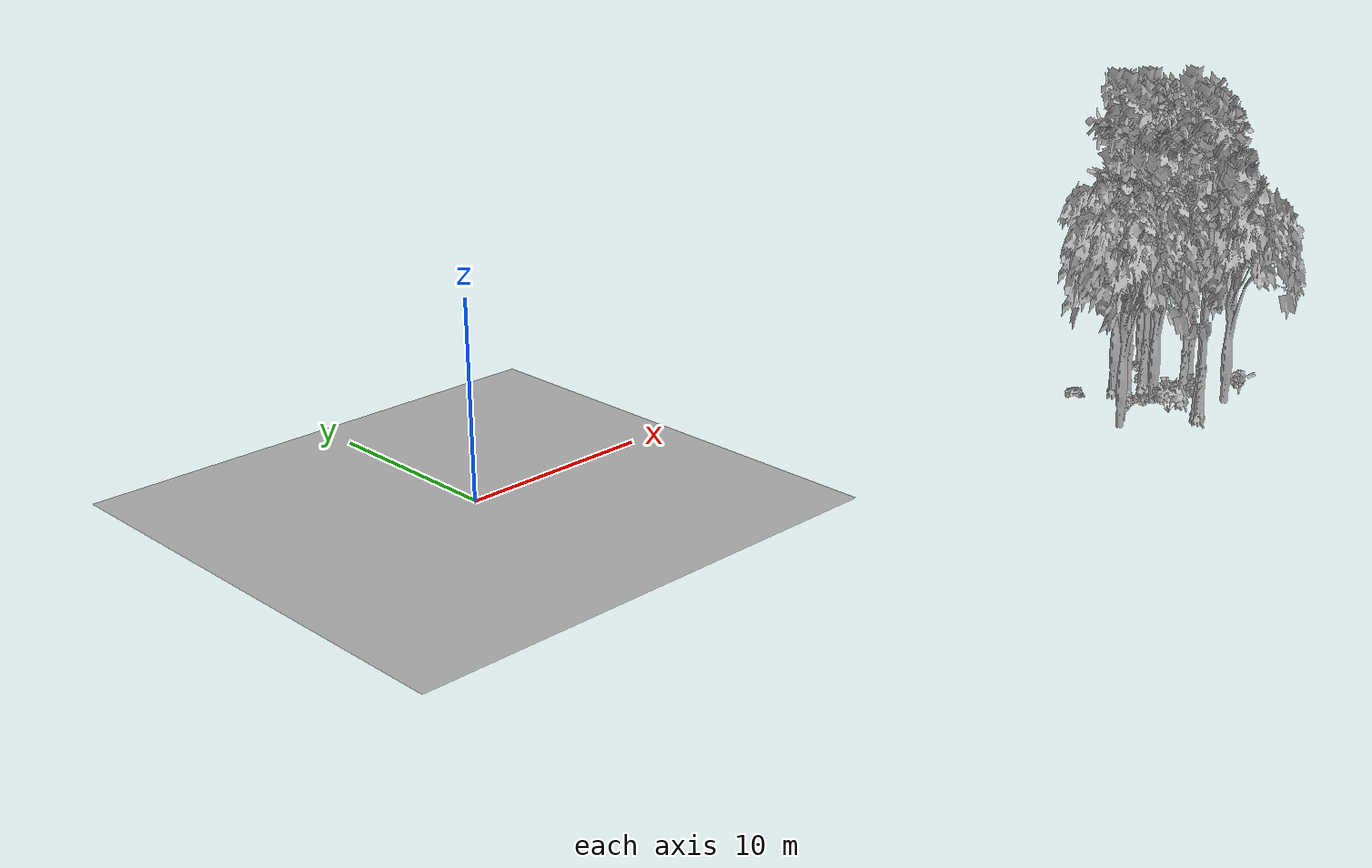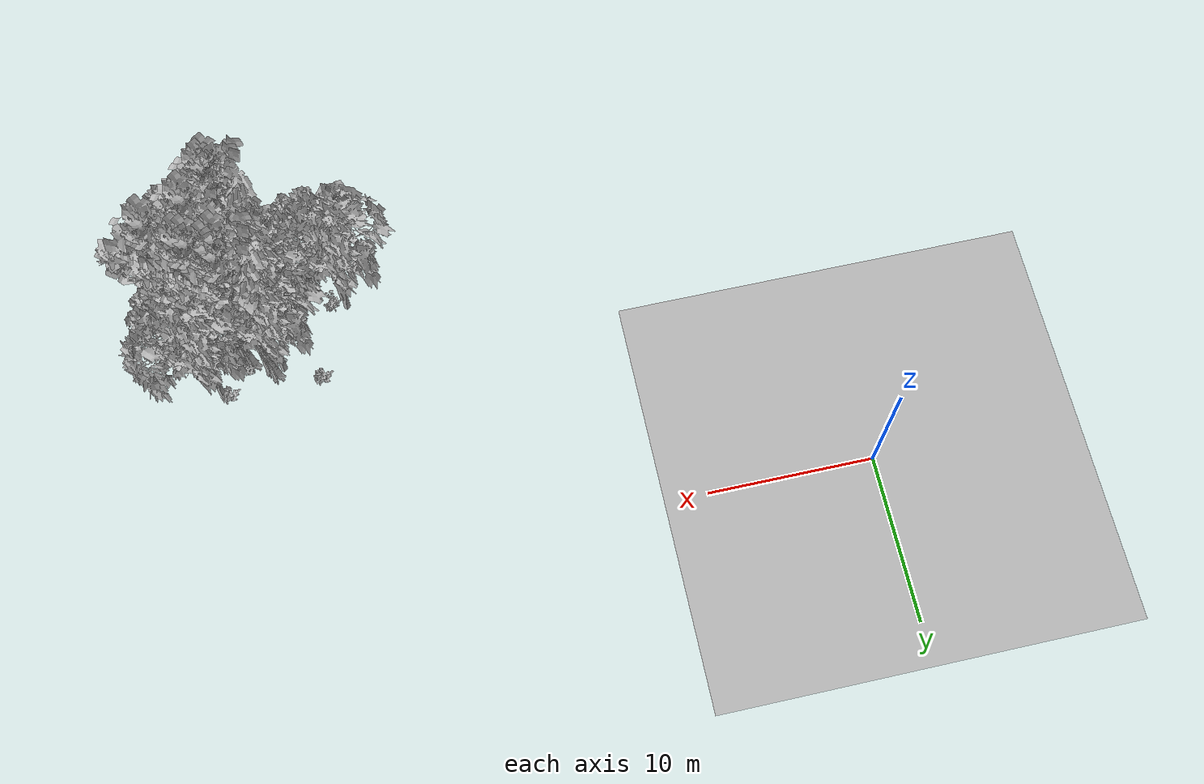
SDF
<sdf version="1.7">
 <world name="default">
  <model name="ground_plane">
   <static>1</static>
   <link name="link">
    <collision name="collision">
     <pose>-50 0 0 0 -0 0</pose>
     <geometry><plane><normal>0 0 1</normal><size>80 80</size></plane></geometry>
     <surface><contact><ode><min_depth>0.01</min_depth><max_vel>0</max_vel></ode></contact></surface>
    </collision>
    <visual name="grass">
     <cast_shadows>0</cast_shadows>
     <geometry>
      <mesh>
       <scale>0.46714285714285714 0.46714285714285714 0.1</scale>
       <uri>file://grass_plane/meshes/grass_plane.dae</uri>
      </mesh>
     </geometry>
    </visual>
   </link>
  </model>
  <model name="Tree 27">
   <static>1</static>
   <pose>33.91250878875485 -13.470792606628457 0 1.57079 -0 0</pose>
   <link name="link">
    <collision name="collision">
     <geometry><mesh><scale>3.5 5 3.5</scale><uri>model://tree_9/meshes/tree_9.obj</uri></mesh></geometry>
    </collision>
    <visual name="visual">
     <geometry><mesh><scale>3.5 5 3.5</scale><uri>model://tree_9/meshes/tree_9.obj</uri></mesh></geometry>
    </visual>
   </link>
  </model>
  <model name="Tree 68">
   <static>1</static>
   <pose>36.81829381499753 -12.469474861508889 0 1.57079 -0 0</pose>
   <link name="link">
    <collision name="collision">
     <geometry><mesh><scale>3.5 5 3.5</scale><uri>model://tree_2/meshes/tree_2.obj</uri></mesh></geometry>
    </collision>
    <visual name="visual">
     <geometry><mesh><scale>3.5 5 3.5</scale><uri>model://tree_2/meshes/tree_2.obj</uri></mesh></geometry>
    </visual>
   </link>
  </model>
  <model name="Tree 121">
   <static>1</static>
   <pose>34.863417988816806 -14.00943108616324 0 1.57079 -0 0</pose>
   <link name="link">
    <collision name="collision">
     <geometry><mesh><scale>3.5 5 3.5</scale><uri>model://tree_9/meshes/tree_9.obj</uri></mesh></geometry>
    </collision>
    <visual name="visual">
     <geometry><mesh><scale>3.5 5 3.5</scale><uri>model://tree_9/meshes/tree_9.obj</uri></mesh></geometry>
    </visual>
   </link>
  </model>
  <model name="Tree 205">
   <static>1</static>
   <pose>28.661978026531884 -16.543465411032994 0 1.57079 -0 0</pose>
   <link name="link">
    <collision name="collision">
     <geometry><mesh><scale>3.5 5 3.5</scale><uri>model://tree_2/meshes/tree_2.obj</uri></mesh></geometry>
    </collision>
    <visual name="visual">
     <geometry><mesh><scale>3.5 5 3.5</scale><uri>model://tree_2/meshes/tree_2.obj</uri></mesh></geometry>
    </visual>
   </link>
  </model>
  <model name="Tree 250">
   <static>1</static>
   <pose>33.5695198800985 -12.984121046782615 0 1.57079 -0 0</pose>
   <link name="link">
    <collision name="collision">
     <geometry><mesh><scale>3.5 5 3.5</scale><uri>model://tree_9/meshes/tree_9.obj</uri></mesh></geometry>
    </collision>
    <visual name="visual">
     <geometry><mesh><scale>3.5 5 3.5</scale><uri>model://tree_9/meshes/tree_9.obj</uri></mesh></geometry>
    </visual>
   </link>
  </model>
  <model name="Tree 278">
   <static>1</static>
   <pose>33.4120792589939 -13.933364478445807 0 1.57079 -0 0</pose>
   <link name="link">
    <collision name="collision">
     <geometry><mesh><scale>3.5 5 3.5</scale><uri>model://tree_9/meshes/tree_9.obj</uri></mesh></geometry>
    </collision>
    <visual name="visual">
     <geometry><mesh><scale>3.5 5 3.5</scale><uri>model://tree_9/meshes/tree_9.obj</uri></mesh></geometry>
    </visual>
   </link>
  </model>
  <model name="Tree 372">
   <static>1</static>
   <pose>35.25034056028858 -14.170819558030281 0 1.57079 -0 0</pose>
   <link name="link">
    <collision name="collision">
     <geometry><mesh><scale>3.5 5 3.5</scale><uri>model://tree_9/meshes/tree_9.obj</uri></mesh></geometry>
    </collision>
    <visual name="visual">
     <geometry><mesh><scale>3.5 5 3.5</scale><uri>model://tree_9/meshes/tree_9.obj</uri></mesh></geometry>
    </visual>
   </link>
  </model>
  <model name="Tree 417">
   <static>1</static>
   <pose>35.44672385627537 -18.597763471025914 0 1.57079 -0 0</pose>
   <link name="link">
    <collision name="collision">
     <geometry><mesh><scale>3.5 5 3.5</scale><uri>model://tree_2/meshes/tree_2.obj</uri></mesh></geometry>
    </collision>
    <visual name="visual">
     <geometry><mesh><scale>3.5 5 3.5</scale><uri>model://tree_2/meshes/tree_2.obj</uri></mesh></geometry>
    </visual>
   </link>
  </model>
  <model name="Tree 449">
   <static>1</static>
   <pose>34.740611126946774 -16.544534145119396 0 1.57079 -0 0</pose>
   <link name="link">
    <collision name="collision">
     <geometry><mesh><scale>3.5 5 3.5</scale><uri>model://tree_9/meshes/tree_9.obj</uri></mesh></geometry>
    </collision>
    <visual name="visual">
     <geometry><mesh><scale>3.5 5 3.5</scale><uri>model://tree_9/meshes/tree_9.obj</uri></mesh></geometry>
    </visual>
   </link>
  </model>
  <model name="Tree 490">
   <static>1</static>
   <pose>32.74320934976599 -15.889743158439693 0 1.57079 -0 0</pose>
   <link name="link">
    <collision name="collision">
     <geometry><mesh><scale>3.5 5 3.5</scale><uri>model://tree_2/meshes/tree_2.obj</uri></mesh></geometry>
    </collision>
    <visual name="visual">
     <geometry><mesh><scale>3.5 5 3.5</scale><uri>model://tree_2/meshes/tree_2.obj</uri></mesh></geometry>
    </visual>
   </link>
  </model>
  <model name="Tree 496">
   <static>1</static>
   <pose>32.98713126347785 -13.280922111802312 0 1.57079 -0 0</pose>
   <link name="link">
    <collision name="collision">
     <geometry><mesh><scale>3.5 5 3.5</scale><uri>model://tree_2/meshes/tree_2.obj</uri></mesh></geometry>
    </collision>
    <visual name="visual">
     <geometry><mesh><scale>3.5 5 3.5</scale><uri>model://tree_2/meshes/tree_2.obj</uri></mesh></geometry>
    </visual>
   </link>
  </model>
  <model name="Tree 532">
   <static>1</static>
   <pose>33.57104357177663 -18.14833724017948 0 1.57079 -0 0</pose>
   <link name="link">
    <collision name="collision">
     <geometry><mesh><scale>3.5 5 3.5</scale><uri>model://tree_9/meshes/tree_9.obj</uri></mesh></geometry>
    </collision>
    <visual name="visual">
     <geometry><mesh><scale>3.5 5 3.5</scale><uri>model://tree_9/meshes/tree_9.obj</uri></mesh></geometry>
    </visual>
   </link>
  </model>
  <model name="Tree 557">
   <static>1</static>
   <pose>36.90389780252404 -15.595839947347045 0 1.57079 -0 0</pose>
   <link name="link">
    <collision name="collision">
     <geometry><mesh><scale>3.5 5 3.5</scale><uri>model://tree_9/meshes/tree_9.obj</uri></mesh></geometry>
    </collision>
    <visual name="visual">
     <geometry><mesh><scale>3.5 5 3.5</scale><uri>model://tree_9/meshes/tree_9.obj</uri></mesh></geometry>
    </visual>
   </link>
  </model>
  <model name="Tree 608">
   <static>1</static>
   <pose>33.29886136367563 -18.446990570052584 0 1.57079 -0 0</pose>
   <link name="link">
    <collision name="collision">
     <geometry><mesh><scale>3.5 5 3.5</scale><uri>model://tree_9/meshes/tree_9.obj</uri></mesh></geometry>
    </collision>
    <visual name="visual">
     <geometry><mesh><scale>3.5 5 3.5</scale><uri>model://tree_9/meshes/tree_9.obj</uri></mesh></geometry>
    </visual>
   </link>
  </model>
  <model name="Bush 8">
   <static>1</static>
   <pose>34.928480510405976 -17.09794384176594 0 1.57079 -0 0</pose>
   <link name="link">
    <collision name="collision">
     <geometry><mesh><scale>2 2 2</scale><uri>model://bush_4/meshes/bush_4.obj</uri></mesh></geometry>
     <surface><contact><collide_without_contact>false</collide_without_contact></contact></surface>
    </collision>
    <visual name="visual">
     <geometry><mesh><scale>2 2 2</scale><uri>model://bush_4/meshes/bush_4.obj</uri></mesh></geometry>
    </visual>
   </link>
  </model>
  <model name="Bush 61">
   <static>1</static>
   <pose>37.1086834610754 -18.566818614491876 0 1.57079 -0 0</pose>
   <link name="link">
    <collision name="collision">
     <geometry><mesh><scale>2 2 2</scale><uri>model://bush_0/meshes/bush_0.obj</uri></mesh></geometry>
     <surface><contact><collide_without_contact>false</collide_without_contact></contact></surface>
    </collision>
    <visual name="visual">
     <geometry><mesh><scale>2 2 2</scale><uri>model://bush_0/meshes/bush_0.obj</uri></mesh></geometry>
    </visual>
   </link>
  </model>
  <model name="Bush 74">
   <static>1</static>
   <pose>36.50506998994324 -12.310680045432747 0 1.57079 -0 0</pose>
   <link name="link">
    <collision name="collision">
     <geometry><mesh><scale>2 2 2</scale><uri>model://bush_2/meshes/bush_2.obj</uri></mesh></geometry>
     <surface><contact><collide_without_contact>false</collide_without_contact></contact></surface>
    </collision>
    <visual name="visual">
     <geometry><mesh><scale>2 2 2</scale><uri>model://bush_2/meshes/bush_2.obj</uri></mesh></geometry>
    </visual>
   </link>
  </model>
  <model name="Bush 133">
   <static>1</static>
   <pose>29.52485724233297 -16.326229463494535 0 1.57079 -0 0</pose>
   <link name="link">
    <collision name="collision">
     <geometry><mesh><scale>2 2 2</scale><uri>model://bush_5/meshes/bush_5.obj</uri></mesh></geometry>
     <surface><contact><collide_without_contact>false</collide_without_contact></contact></surface>
    </collision>
    <visual name="visual">
     <geometry><mesh><scale>2 2 2</scale><uri>model://bush_5/meshes/bush_5.obj</uri></mesh></geometry>
    </visual>
   </link>
  </model>
  <model name="Bush 152">
   <static>1</static>
   <pose>32.187293439596175 -17.299652838091983 0 1.57079 -0 0</pose>
   <link name="link">
    <collision name="collision">
     <geometry><mesh><scale>2 2 2</scale><uri>model://bush_1/meshes/bush_1.obj</uri></mesh></geometry>
     <surface><contact><collide_without_contact>false</collide_without_contact></contact></surface>
    </collision>
    <visual name="visual">
     <geometry><mesh><scale>2 2 2</scale><uri>model://bush_1/meshes/bush_1.obj</uri></mesh></geometry>
    </visual>
   </link>
  </model>
  <model name="Bush 275">
   <static>1</static>
   <pose>33.50059603898775 -16.424525556625056 0 1.57079 -0 0</pose>
   <link name="link">
    <collision name="collision">
     <geometry><mesh><scale>2 2 2</scale><uri>model://bush_4/meshes/bush_4.obj</uri></mesh></geometry>
     <surface><contact><collide_without_contact>false</collide_without_contact></contact></surface>
    </collision>
    <visual name="visual">
     <geometry><mesh><scale>2 2 2</scale><uri>model://bush_4/meshes/bush_4.obj</uri></mesh></geometry>
    </visual>
   </link>
  </model>
  <model name="Bush 331">
   <static>1</static>
   <pose>32.240576263757575 -15.35907857621492 0 1.57079 -0 0</pose>
   <link name="link">
    <collision name="collision">
     <geometry><mesh><scale>2 2 2</scale><uri>model://bush_2/meshes/bush_2.obj</uri></mesh></geometry>
     <surface><contact><collide_without_contact>false</collide_without_contact></contact></surface>
    </collision>
    <visual name="visual">
     <geometry><mesh><scale>2 2 2</scale><uri>model://bush_2/meshes/bush_2.obj</uri></mesh></geometry>
    </visual>
   </link>
  </model>
  <model name="Bush 368">
   <static>1</static>
   <pose>30.88983099972498 -12.27831004834849 0 1.57079 -0 0</pose>
   <link name="link">
    <collision name="collision">
     <geometry><mesh><scale>2 2 2</scale><uri>model://bush_2/meshes/bush_2.obj</uri></mesh></geometry>
     <surface><contact><collide_without_contact>false</collide_without_contact></contact></surface>
    </collision>
    <visual name="visual">
     <geometry><mesh><scale>2 2 2</scale><uri>model://bush_2/meshes/bush_2.obj</uri></mesh></geometry>
    </visual>
   </link>
  </model>
  <model name="Bush 509">
   <static>1</static>
   <pose>35.32715370230164 -13.763231470034782 0 1.57079 -0 0</pose>
   <link name="link">
    <collision name="collision">
     <geometry><mesh><scale>2 2 2</scale><uri>model://bush_2/meshes/bush_2.obj</uri></mesh></geometry>
     <surface><contact><collide_without_contact>false</collide_without_contact></contact></surface>
    </collision>
    <visual name="visual">
     <geometry><mesh><scale>2 2 2</scale><uri>model://bush_2/meshes/bush_2.obj</uri></mesh></geometry>
    </visual>
   </link>
  </model>
 </world>
</sdf>
